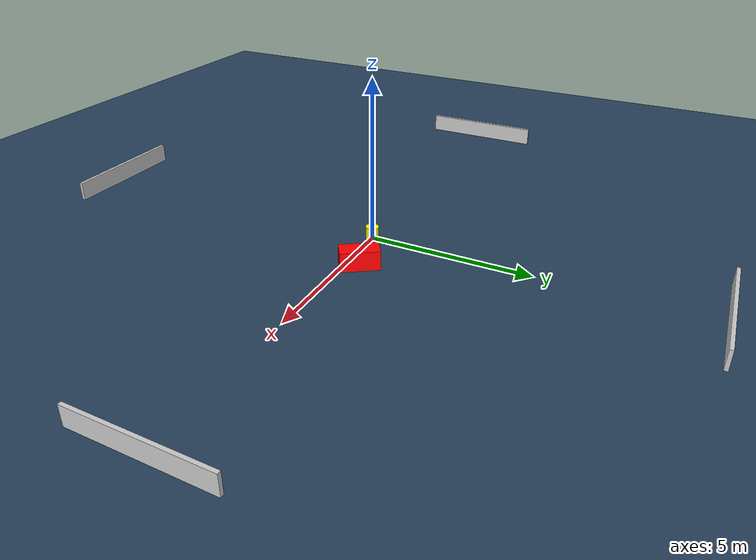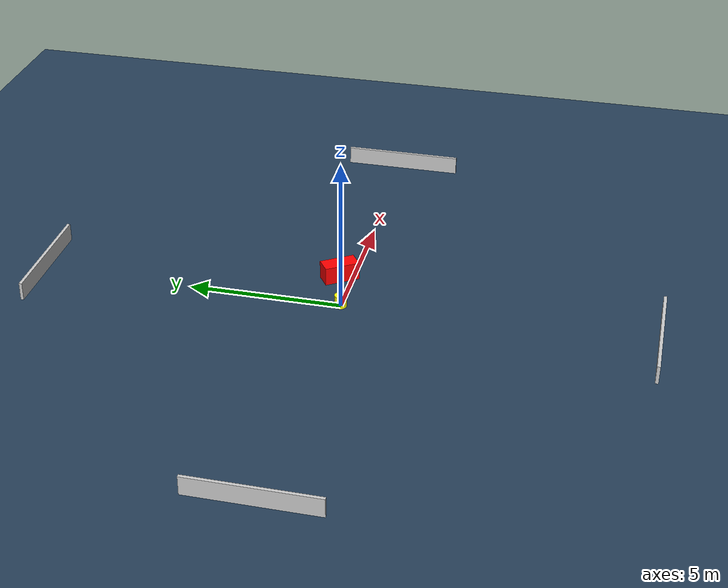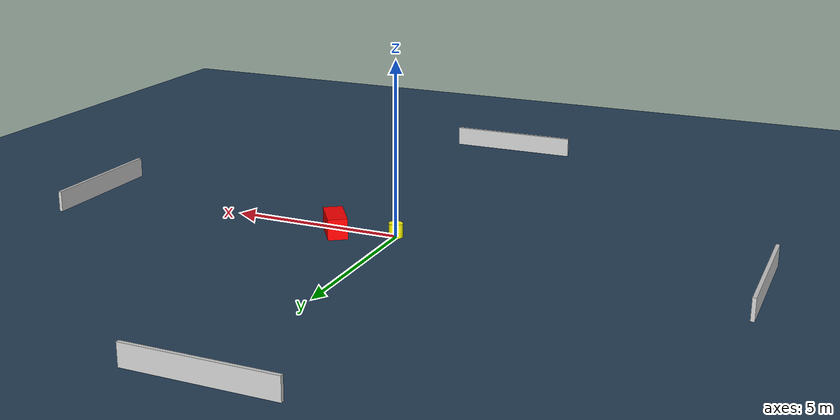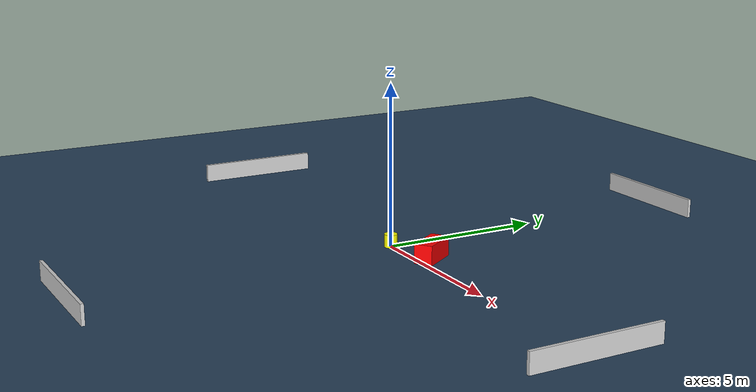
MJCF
<?xml version="1.0" ?>
<mujoco model="generated_environment">
  <option timestep="0.01" integrator="RK4" cone="elliptic"/>
  <default>
    <geom density="1"/>
  </default>
  <asset>
    <texture builtin="gradient" height="3072" rgb1="0.3 0.5 0.7" rgb2="0 0 0" type="skybox" width="512"/>
    <texture builtin="checker" height="300" mark="edge" markrgb="0.8 0.8 0.8" name="groundplane" rgb1="0.2 0.3 0.4" rgb2="0.1 0.2 0.3" type="2d" width="300"/>
    <material name="groundplane" reflectance="0.2" texrepeat="5 5" texture="groundplane" texuniform="true"/>
    <material name="robot" rgba="1.0 1.0 0.0 1.0"/>
  </asset>
  <worldbody>
    <light dir="0 0 -1" directional="true" pos="0 0 1.5"/>
    <geom condim="4" friction="0.5 0.005 0.001" material="groundplane" name="floor" size="0 0 0.05" type="plane"/>
    <body name="walls">
      <geom name="wall_1" condim="4" pos="-10.0 0.0 0.3" rgba="0.800000011920929 0.800000011920929 0.800000011920929 1.0" size="0.05 2.0 0.3" type="box"/>
      <geom name="wall_2" condim="4" pos="10.0 0.0 0.3" rgba="0.800000011920929 0.800000011920929 0.800000011920929 1.0" size="0.05 2.0 0.3" type="box"/>
      <geom name="wall_3" condim="4" pos="0.0 -10.0 0.3" rgba="0.800000011920929 0.800000011920929 0.800000011920929 1.0" size="2.0 0.05 0.3" type="box"/>
      <geom name="wall_4" condim="4" pos="0.0 10.0 0.3" rgba="0.800000011920929 0.800000011920929 0.800000011920929 1.0" size="2.0 0.05 0.3" type="box"/>
    </body>
    <body name="robot">
      <joint name="joint_x" type="slide" pos="0 0 0" axis="1 0 0"/>
      <joint name="joint_y" type="slide" pos="0 0 0" axis="0 1 0"/>
      <geom name="robot" type="cylinder" pos="0.0 0.0 0.2" size="0.2 0.2 0.0" mass="5.0" friction="1.0 0.005 0.0001" condim="4" rgba="1.0 1.0 0.0 1.0"/>
    </body>
    <body name="obstacle_1_static">
      <geom name="obstacle_1_static" condim="4" pos="1.6692475725117502 0.43326899568293387 0.3" euler="0 0 33.84624847578398" friction="0.0 0.005 0.001" rgba="1 0 0 1" size="0.2802854807625626 0.5821102253649597 0.3" type="box"/>
    </body>
    <site name='origin_x' pos="1 0 0" size="0.01 0.01 0.01" rgba="1 0 0 1"/>
    <site name='origin_y' pos="0 1 0" size="0.01 0.01 0.01" rgba="0 1 0 1"/>
    <site name='origin_z' pos="0 0 1" size="0.01 0.01 0.01" rgba="0 0 1 1"/>
  </worldbody>
  <actuator>
    <motor name="actuator_x" joint="joint_x" gear="1" ctrlrange="-1 1"/>
    <motor name="actuator_y" joint="joint_y" gear="1" ctrlrange="-1 1"/>
  </actuator>
</mujoco>
